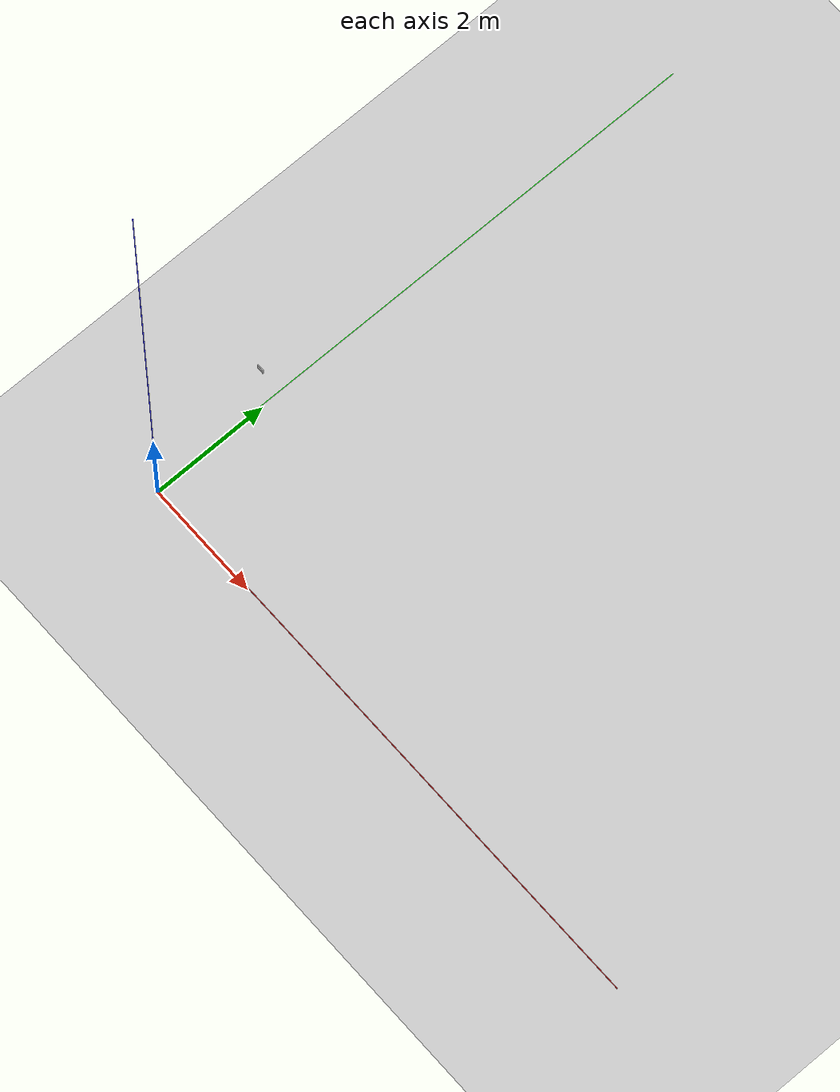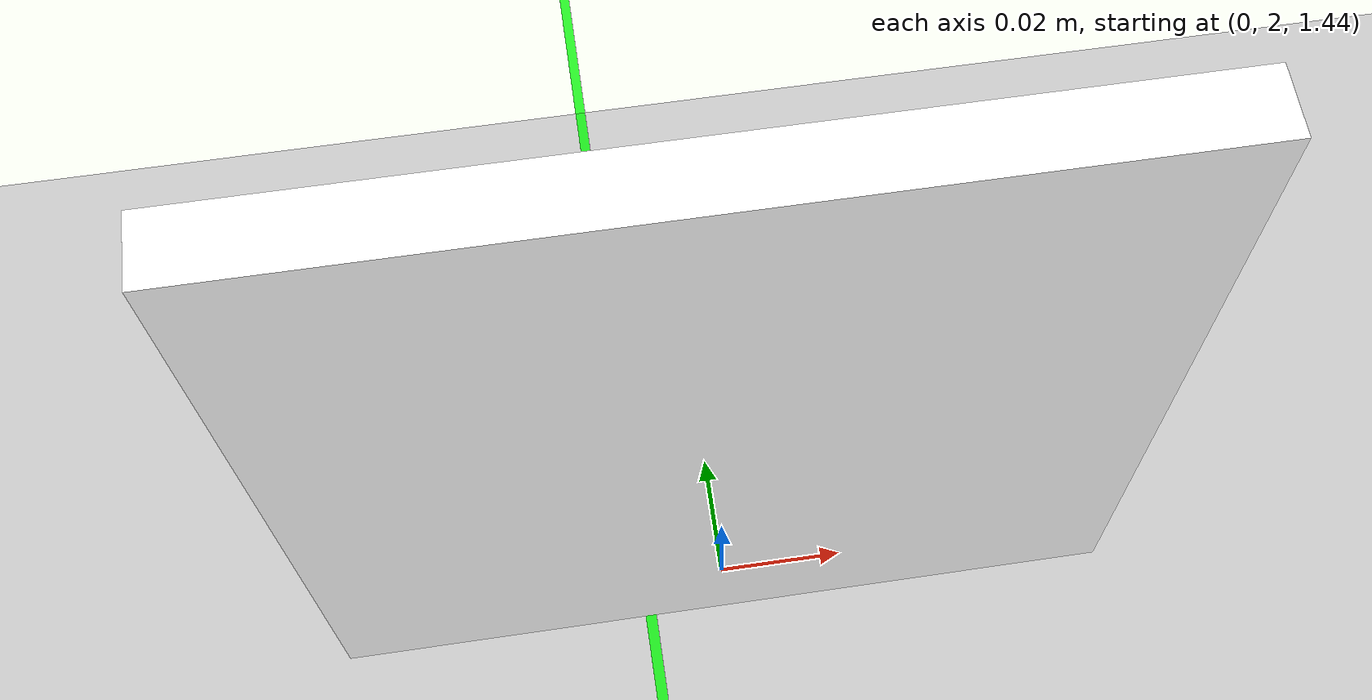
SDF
<sdf version="1.9">
 <world name="apriltag_test">
  <physics name="1ms" type="ignore">
   <max_step_size>0.001</max_step_size>
   <real_time_factor>1.0</real_time_factor>
  </physics>
  <plugin filename="gz-sim-physics-system" name="gz::sim::systems::Physics"/>
  <plugin filename="gz-sim-sensors-system" name="gz::sim::systems::Sensors">
   <render_engine>ogre2</render_engine>
  </plugin>
  <plugin filename="gz-sim-user-commands-system" name="gz::sim::systems::UserCommands"/>
  <plugin filename="gz-sim-scene-broadcaster-system" name="gz::sim::systems::SceneBroadcaster"/>
  <plugin filename="gz-sim-imu-system" name="gz::sim::systems::Imu"/>
  <plugin filename="gz-sim-navsat-system" name="gz::sim::systems::NavSat"/>
  <gravity>0 0 -9.8000000000000007</gravity>
  <magnetic_field>5.5644999999999998e-06 2.2875799999999999e-05 -4.2388400000000002e-05</magnetic_field>
  <atmosphere type="adiabatic"/>
  <scene><ambient>1.0 1.0 1.0</ambient><background>0.8 0.8 0.8</background></scene>
  <spherical_coordinates>
   <latitude_deg>-35.363262</latitude_deg>
   <longitude_deg>149.165237</longitude_deg>
   <elevation>584</elevation>
   <heading_deg>0</heading_deg>
   <surface_model>EARTH_WGS84</surface_model>
  </spherical_coordinates>
  <light type="directional" name="sun">
   <pose>0 0 10 0 0 0</pose>
   <diffuse>0.8 0.8 0.8 1</diffuse>
   <specular>0.8 0.8 0.8 1</specular>
   <attenuation>
    <range>1000</range>
    <constant>0.9</constant>
    <linear>0.01</linear>
    <quadratic>0.001</quadratic>
   </attenuation>
   <direction>-0.5 0.1 -0.9</direction>
  </light>
  <model name="axes">
   <static>1</static>
   <link name="link">
    <visual name="r">
     <cast_shadows>0</cast_shadows>
     <pose>5 0 0.1 0 0 0</pose>
     <geometry><box><size>10 0.01 0.01</size></box></geometry>
     <material>
      <ambient>1 0 0 0.8</ambient>
      <diffuse>1 0 0 0.8</diffuse>
      <emissive>1 0 0 0.8</emissive>
      <specular>0.5 0.5 0.5 0.8</specular>
     </material>
    </visual>
    <visual name="g">
     <cast_shadows>0</cast_shadows>
     <pose>0 5 0.1 0 0 0</pose>
     <geometry><box><size>0.01 10 0.01</size></box></geometry>
     <material>
      <ambient>0 1 0 0.8</ambient>
      <diffuse>0 1 0 0.8</diffuse>
      <emissive>0 1 0 0.8</emissive>
      <specular>0.5 0.5 0.5 0.8</specular>
     </material>
    </visual>
    <visual name="b">
     <cast_shadows>0</cast_shadows>
     <pose>0 0 5.1 0 0 0</pose>
     <geometry><box><size>0.01 0.01 10</size></box></geometry>
     <material>
      <ambient>0 0 1 0.8</ambient>
      <diffuse>0 0 1 0.8</diffuse>
      <emissive>0 0 1 0.8</emissive>
      <specular>0.5 0.5 0.5 0.8</specular>
     </material>
    </visual>
    <sensor name="navsat_sensor" type="navsat"><always_on>1</always_on><update_rate>1</update_rate></sensor>
   </link>
  </model>
  <model name="ground_plane">
   <static>true</static>
   <link name="link">
    <collision name="collision">
     <geometry><plane><normal>0 0 1</normal><size>100 100</size></plane></geometry>
    </collision>
    <visual name="visual">
     <geometry><plane><normal>0 0 1</normal><size>100 100</size></plane></geometry>
     <material>
      <ambient>0.800000012 0.800000012 0.800000012 1</ambient>
      <diffuse>0.800000012 0.800000012 0.800000012 1</diffuse>
      <specular>0.800000012 0.800000012 0.800000012 1</specular>
     </material>
    </visual>
    <inertial>
     <mass>1</mass>
     <inertia><ixx>1</ixx><ixy>0</ixy><ixz>0</ixz><iyy>1</iyy><iyz>0</iyz><izz>1</izz></inertia>
    </inertial>
   </link>
  </model>
  <include>
   <uri>model://apriltag_36h11_0</uri>
   <name>apriltag_36h11_0</name>
   <pose>0 2 1.5 0 1.5708 1.5708</pose>
  </include>
 </world>
</sdf>

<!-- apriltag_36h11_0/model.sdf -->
<sdf version="1.9">
  <model name="apriltag_36h11_0">
    <static>true</static>
    <link name="link">
      <visual name="visual">
        <geometry>
          <box>
            <size>0.127 0.127 0.01</size>
          </box>
        </geometry>
        <material>
          <ambient>1 1 1 1</ambient>
          <diffuse>1 1 1 1</diffuse>
          <specular>0.5 0.5 0.5 1</specular>
          <pbr>
            <metal>
              <albedo_map>materials/textures/tag36h11_0.png</albedo_map>
              <roughness>0.5</roughness>
              <metalness>0.0</metalness>
            </metal>
          </pbr>
        </material>
      </visual>
      <collision name="collision">
        <geometry>
          <box>
            <size>0.127 0.127 0.01</size>
          </box>
        </geometry>
      </collision>
    </link>
  </model>
</sdf>
